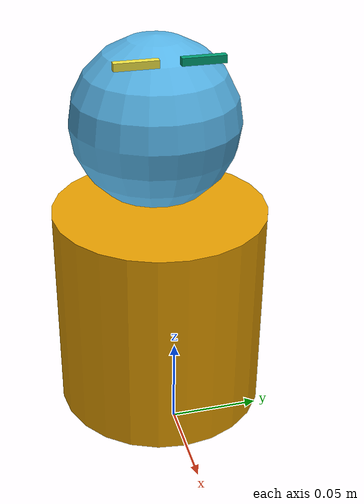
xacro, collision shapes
<?xml version="1.0"?>

<robot name="aisoy"
       xmlns:xacro="http://ros.org/wiki/xacro">

  <property name="M_PI" value="3.14159"/>

  <link name="base_link">
    <inertial>
      <mass value="1.1242672" />
      <origin xyz="-0.0332797 0.0000456 0.0375629" />
      <inertia ixx="0.0032602" ixy="0.0000001" ixz="-0.0001248"
        iyy="0.0033958" iyz="0.0000002" izz="0.0039815" />
    </inertial>

    <visual>
      <origin xyz="0 0 0" rpy="0 0 0" />
      <geometry>
        <mesh filename="package://aisoy_description/meshes/01_aisoy1_base.dae"/>
      </geometry>
    </visual>

    <collision>
      <origin xyz="-0.0332797 0.0 0.0605" rpy="0 0 0" />
      <geometry>
        <cylinder length="0.121" radius="0.06"/>
      </geometry>
    </collision>
  </link>

  <joint name="base_head_joint" type="revolute">
    <origin xyz="-0.043 0.0 0.121" rpy="0 0 0" />
    <axis xyz="0 0 1"/>
    <limit effort="10.0" lower="${M_PI/-2}" upper="${M_PI/2}" velocity="${M_PI}"/>
    <calibration rising="0.0"/>
    <parent link="base_link"/>
    <child link="head_link" />
  </joint>

  <link name="head_link">
    <inertial>
      <mass value="0.3249771" />
      <origin xyz="-0.0016012 0.0003076 0.0592513" />
      <inertia ixx="0.0004418" ixy="-0.0000033" ixz="-0.0000301"
        iyy="0.0003612" iyz="-0.0000008" izz="0.0004281" />
    </inertial>

    <visual>
      <origin xyz="0.043 0 -0.121" rpy="0 0 0" />
      <geometry>
        <mesh filename="package://aisoy_description/meshes/02_aisoy1_head.dae"/>
      </geometry>
    </visual>

    <collision>
      <origin xyz="-0.0 0.0 0.047" rpy="0 0 0" />
      <geometry>
        <sphere radius="0.047"/>
      </geometry>
    </collision>

  </link>

  <joint name="head_eyebrow_l_joint" type="revolute">
    <origin xyz="0.030 0.012 0.08681" rpy="0 0 0" />
    <axis xyz="1 0 0"/>
    <limit effort="10.0" lower="${M_PI/-6}" upper="${M_PI/8}" velocity="${M_PI}"/>
    <calibration rising="0.0"/>
    <parent link="head_link"/>
    <child link="eyebrow_l_link" />
  </joint>

  <link name="eyebrow_l_link">
    <inertial>
      <mass value="0.0044168" />
      <origin xyz="0.0014088 0.0043205 0.0030777" />
      <inertia ixx="0.0000002" ixy="0.0" ixz="0.0"
        iyy="0.0" iyz="0.0" izz="0.0000002" />
    </inertial>

    <visual>
      <origin xyz="0.013 -0.012 -0.20781" rpy="0 0 0" />
      <geometry>
        <mesh filename="package://aisoy_description/meshes/03_aisoy1_eyebrows_l.dae"/>
      </geometry>
    </visual>

    <collision>
      <origin xyz="-0.0 0.005 0.002" rpy="0 0 0" />
      <geometry>
        <box size="0.004 0.023 0.004" />
      </geometry>
    </collision>

  </link>

  <joint name="head_eyebrow_r_joint" type="revolute">
    <origin xyz="0.030 -0.012 0.08681" rpy="0 0 0" />
    <axis xyz="-1 0 0"/>
    <limit effort="10.0" lower="${M_PI/-6}" upper="${M_PI/8}" velocity="${M_PI}"/>
    <calibration rising="0.0"/>
    <parent link="head_link"/>
    <child link="eyebrow_r_link" />
  </joint>

  <link name="eyebrow_r_link">
    <inertial>
      <mass value="0.0044168" />
      <origin xyz="0.0014088 -0.0043205 0.0030777" />
      <inertia ixx="0.0000002" ixy="0.0" ixz="0.0"
        iyy="0.0" iyz="0.0" izz="0.0000002" />
    </inertial>

    <visual>
      <origin xyz="0.013 0.012 -0.20781" rpy="0 0 0" />
      <geometry>
        <mesh filename="package://aisoy_description/meshes/03_aisoy1_eyebrows_r.dae"/>
      </geometry>
    </visual>

    <collision>
      <origin xyz="-0.0 -0.005 0.002" rpy="0 0 0" />
      <geometry>
        <box size="0.004 0.023 0.004" />
      </geometry>
    </collision>

  </link>

</robot>
